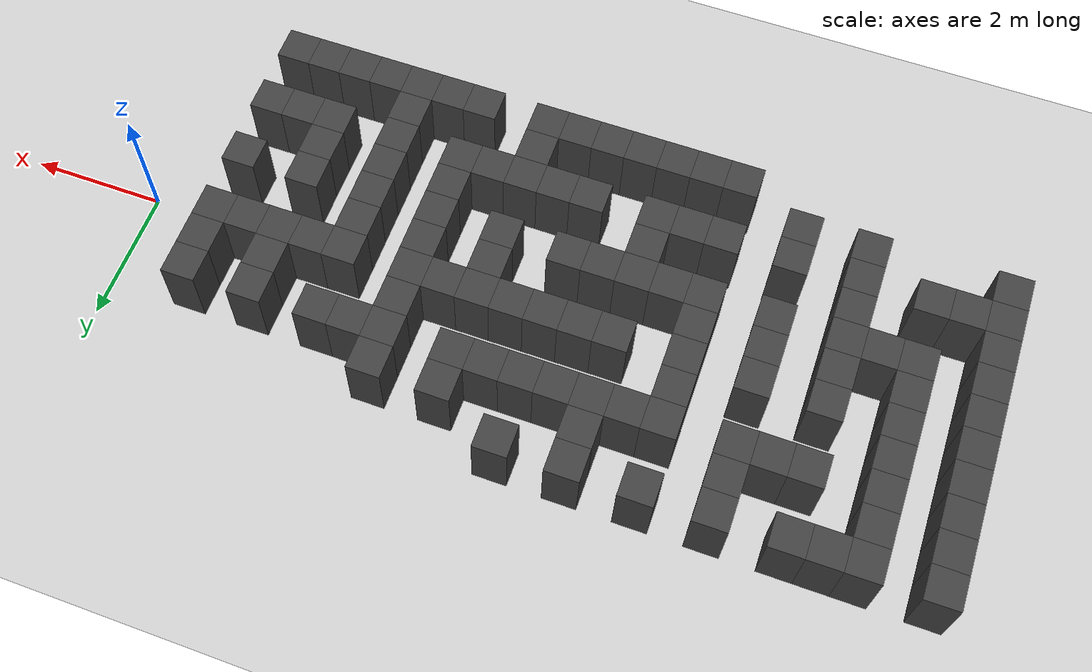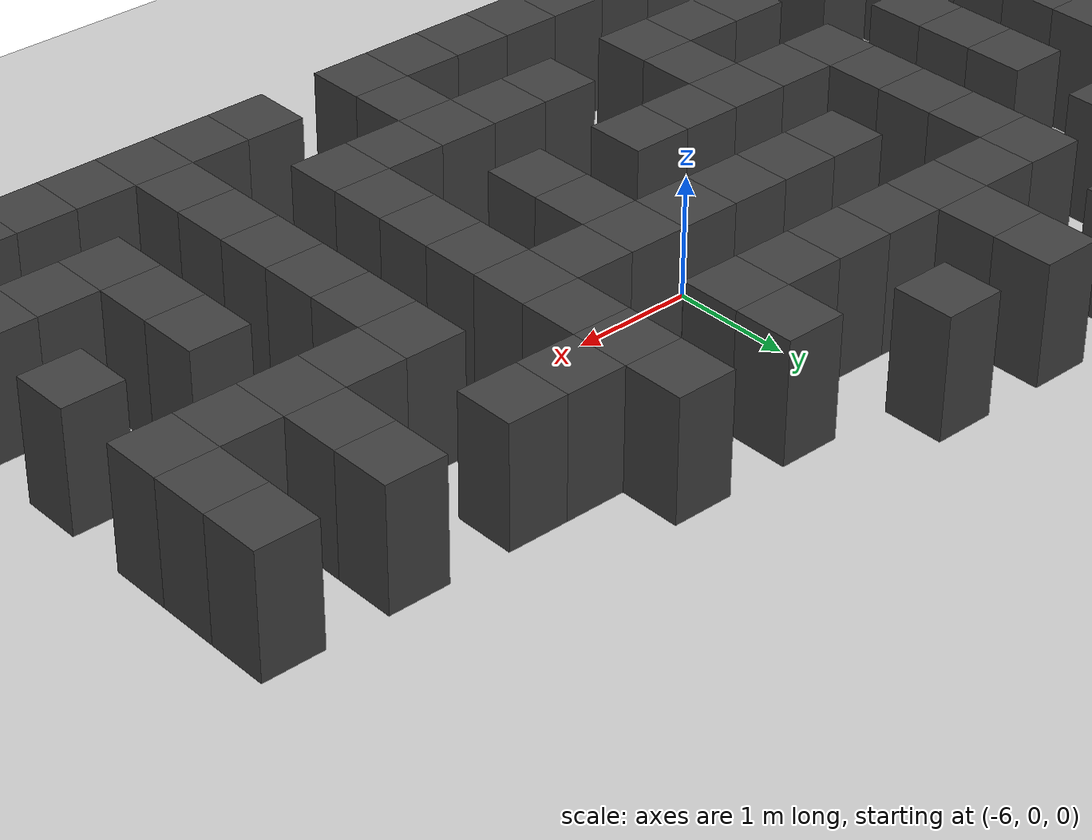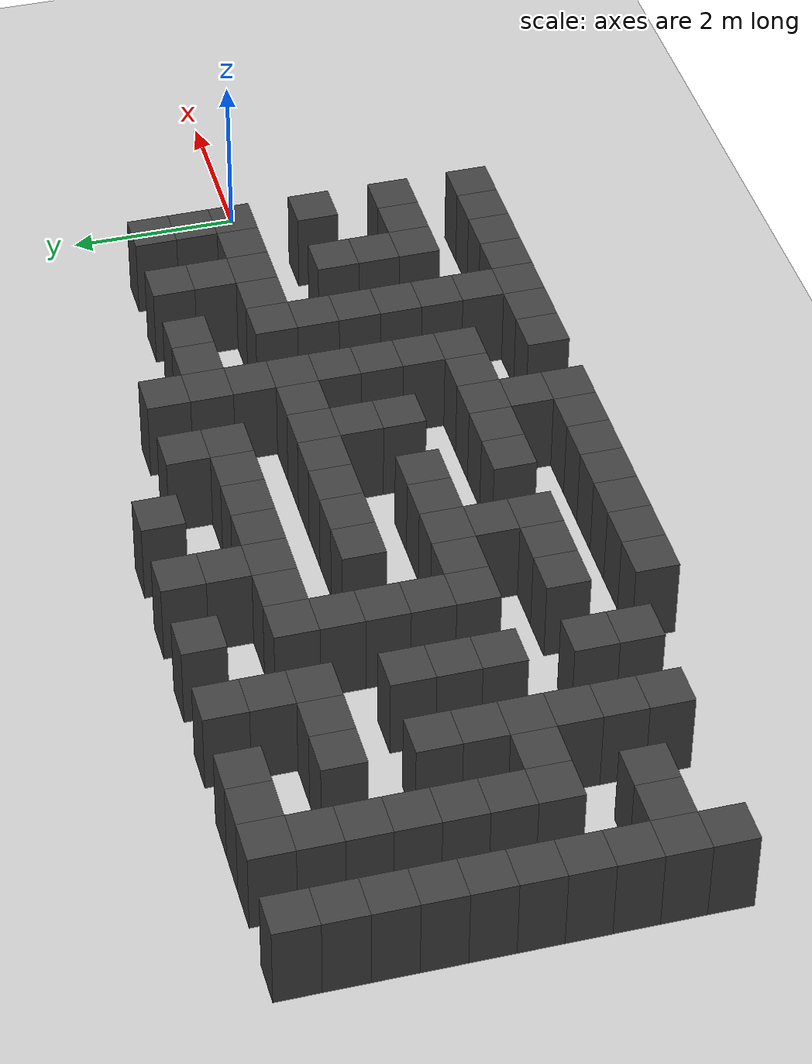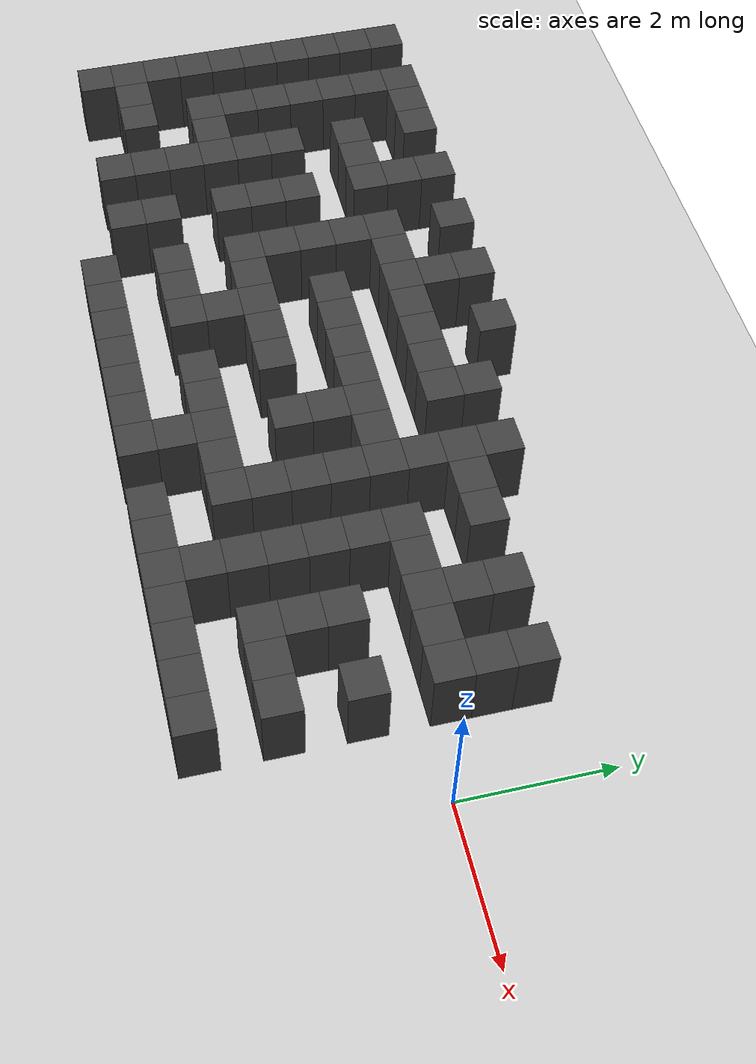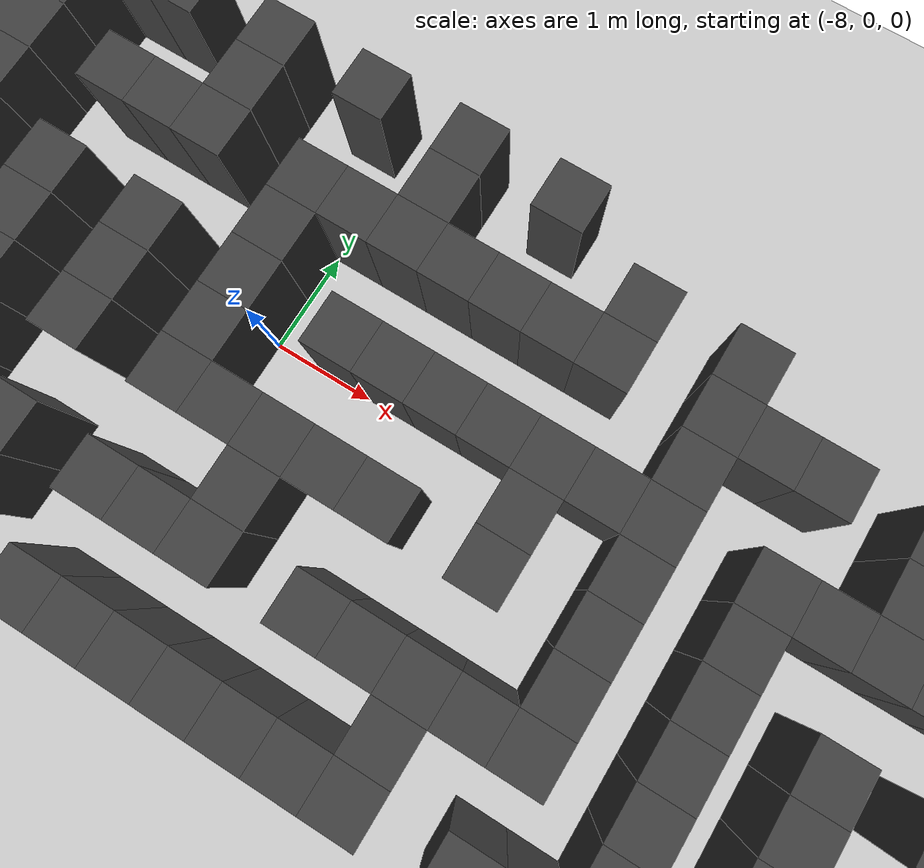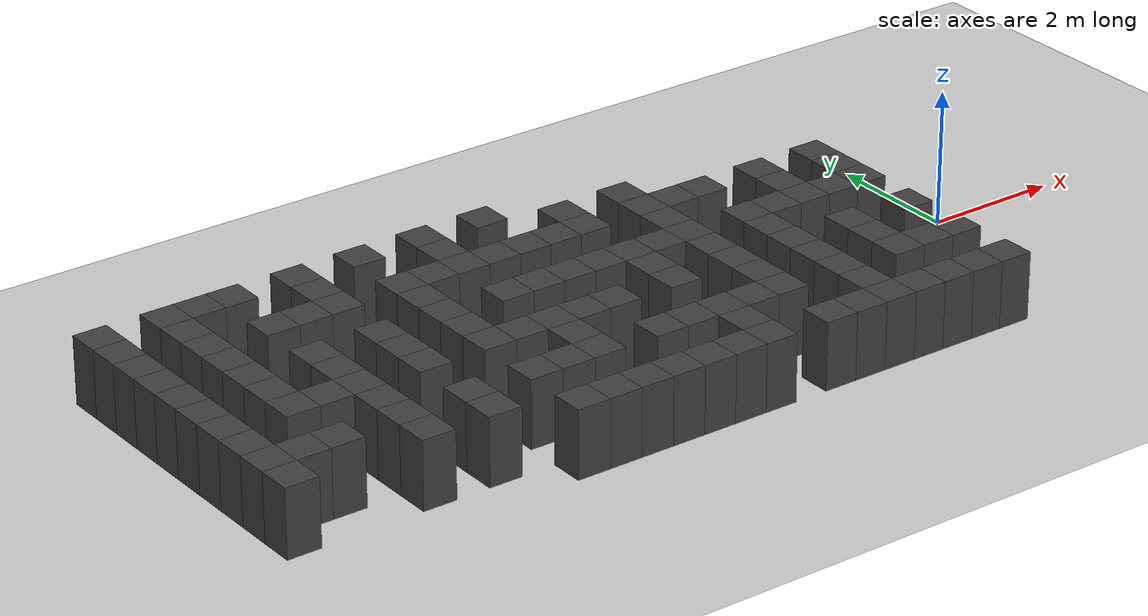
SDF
<sdf version="1.7">
 <world name="map_18814">
  <model name="ground_plane">
   <static>true</static>
   <link name="link">
    <collision name="collision">
     <geometry><plane><normal>0 0 1</normal><size>200 200</size></plane></geometry>
    </collision>
    <visual name="visual">
     <geometry><plane><normal>0 0 1</normal><size>200 200</size></plane></geometry>
     <material><ambient>0.8 0.8 0.8 1</ambient><diffuse>0.8 0.8 0.8 1</diffuse></material>
    </visual>
   </link>
  </model>
  <model name="maze_environment">
   <static>true</static>
   <link name="wall_513">
    <pose>-12.250 2.250 0.500 0 0 0</pose>
    <collision name="col"><geometry><box><size>0.5 0.5 1.0</size></box></geometry></collision>
    <visual name="vis">
     <geometry><box><size>0.5 0.5 1.0</size></box></geometry>
     <material><ambient>0.15 0.15 0.15 1</ambient><diffuse>0.25 0.25 0.25 1</diffuse></material>
    </visual>
   </link>
   <link name="wall_514">
    <pose>-11.250 2.250 0.500 0 0 0</pose>
    <collision name="col"><geometry><box><size>0.5 0.5 1.0</size></box></geometry></collision>
    <visual name="vis">
     <geometry><box><size>0.5 0.5 1.0</size></box></geometry>
     <material><ambient>0.15 0.15 0.15 1</ambient><diffuse>0.25 0.25 0.25 1</diffuse></material>
    </visual>
   </link>
   <link name="wall_515">
    <pose>-10.750 2.250 0.500 0 0 0</pose>
    <collision name="col"><geometry><box><size>0.5 0.5 1.0</size></box></geometry></collision>
    <visual name="vis">
     <geometry><box><size>0.5 0.5 1.0</size></box></geometry>
     <material><ambient>0.15 0.15 0.15 1</ambient><diffuse>0.25 0.25 0.25 1</diffuse></material>
    </visual>
   </link>
   <link name="wall_516">
    <pose>-10.250 2.250 0.500 0 0 0</pose>
    <collision name="col"><geometry><box><size>0.5 0.5 1.0</size></box></geometry></collision>
    <visual name="vis">
     <geometry><box><size>0.5 0.5 1.0</size></box></geometry>
     <material><ambient>0.15 0.15 0.15 1</ambient><diffuse>0.25 0.25 0.25 1</diffuse></material>
    </visual>
   </link>
   <link name="wall_517">
    <pose>-9.250 2.250 0.500 0 0 0</pose>
    <collision name="col"><geometry><box><size>0.5 0.5 1.0</size></box></geometry></collision>
    <visual name="vis">
     <geometry><box><size>0.5 0.5 1.0</size></box></geometry>
     <material><ambient>0.15 0.15 0.15 1</ambient><diffuse>0.25 0.25 0.25 1</diffuse></material>
    </visual>
   </link>
   <link name="wall_518">
    <pose>-8.250 2.250 0.500 0 0 0</pose>
    <collision name="col"><geometry><box><size>0.5 0.5 1.0</size></box></geometry></collision>
    <visual name="vis">
     <geometry><box><size>0.5 0.5 1.0</size></box></geometry>
     <material><ambient>0.15 0.15 0.15 1</ambient><diffuse>0.25 0.25 0.25 1</diffuse></material>
    </visual>
   </link>
   <link name="wall_519">
    <pose>-7.250 2.250 0.500 0 0 0</pose>
    <collision name="col"><geometry><box><size>0.5 0.5 1.0</size></box></geometry></collision>
    <visual name="vis">
     <geometry><box><size>0.5 0.5 1.0</size></box></geometry>
     <material><ambient>0.15 0.15 0.15 1</ambient><diffuse>0.25 0.25 0.25 1</diffuse></material>
    </visual>
   </link>
   <link name="wall_520">
    <pose>-6.250 2.250 0.500 0 0 0</pose>
    <collision name="col"><geometry><box><size>0.5 0.5 1.0</size></box></geometry></collision>
    <visual name="vis">
     <geometry><box><size>0.5 0.5 1.0</size></box></geometry>
     <material><ambient>0.15 0.15 0.15 1</ambient><diffuse>0.25 0.25 0.25 1</diffuse></material>
    </visual>
   </link>
   <link name="wall_546">
    <pose>-12.250 1.750 0.500 0 0 0</pose>
    <collision name="col"><geometry><box><size>0.5 0.5 1.0</size></box></geometry></collision>
    <visual name="vis">
     <geometry><box><size>0.5 0.5 1.0</size></box></geometry>
     <material><ambient>0.15 0.15 0.15 1</ambient><diffuse>0.25 0.25 0.25 1</diffuse></material>
    </visual>
   </link>
   <link name="wall_547">
    <pose>-11.250 1.750 0.500 0 0 0</pose>
    <collision name="col"><geometry><box><size>0.5 0.5 1.0</size></box></geometry></collision>
    <visual name="vis">
     <geometry><box><size>0.5 0.5 1.0</size></box></geometry>
     <material><ambient>0.15 0.15 0.15 1</ambient><diffuse>0.25 0.25 0.25 1</diffuse></material>
    </visual>
   </link>
   <link name="wall_548">
    <pose>-9.250 1.750 0.500 0 0 0</pose>
    <collision name="col"><geometry><box><size>0.5 0.5 1.0</size></box></geometry></collision>
    <visual name="vis">
     <geometry><box><size>0.5 0.5 1.0</size></box></geometry>
     <material><ambient>0.15 0.15 0.15 1</ambient><diffuse>0.25 0.25 0.25 1</diffuse></material>
    </visual>
   </link>
   <link name="wall_549">
    <pose>-7.250 1.750 0.500 0 0 0</pose>
    <collision name="col"><geometry><box><size>0.5 0.5 1.0</size></box></geometry></collision>
    <visual name="vis">
     <geometry><box><size>0.5 0.5 1.0</size></box></geometry>
     <material><ambient>0.15 0.15 0.15 1</ambient><diffuse>0.25 0.25 0.25 1</diffuse></material>
    </visual>
   </link>
   <link name="wall_550">
    <pose>-5.250 1.750 0.500 0 0 0</pose>
    <collision name="col"><geometry><box><size>0.5 0.5 1.0</size></box></geometry></collision>
    <visual name="vis">
     <geometry><box><size>0.5 0.5 1.0</size></box></geometry>
     <material><ambient>0.15 0.15 0.15 1</ambient><diffuse>0.25 0.25 0.25 1</diffuse></material>
    </visual>
   </link>
   <link name="wall_551">
    <pose>-4.250 1.750 0.500 0 0 0</pose>
    <collision name="col"><geometry><box><size>0.5 0.5 1.0</size></box></geometry></collision>
    <visual name="vis">
     <geometry><box><size>0.5 0.5 1.0</size></box></geometry>
     <material><ambient>0.15 0.15 0.15 1</ambient><diffuse>0.25 0.25 0.25 1</diffuse></material>
    </visual>
   </link>
   <link name="wall_560">
    <pose>-12.250 1.250 0.500 0 0 0</pose>
    <collision name="col"><geometry><box><size>0.5 0.5 1.0</size></box></geometry></collision>
    <visual name="vis">
     <geometry><box><size>0.5 0.5 1.0</size></box></geometry>
     <material><ambient>0.15 0.15 0.15 1</ambient><diffuse>0.25 0.25 0.25 1</diffuse></material>
    </visual>
   </link>
   <link name="wall_561">
    <pose>-11.250 1.250 0.500 0 0 0</pose>
    <collision name="col"><geometry><box><size>0.5 0.5 1.0</size></box></geometry></collision>
    <visual name="vis">
     <geometry><box><size>0.5 0.5 1.0</size></box></geometry>
     <material><ambient>0.15 0.15 0.15 1</ambient><diffuse>0.25 0.25 0.25 1</diffuse></material>
    </visual>
   </link>
   <link name="wall_562">
    <pose>-10.250 1.250 0.500 0 0 0</pose>
    <collision name="col"><geometry><box><size>0.5 0.5 1.0</size></box></geometry></collision>
    <visual name="vis">
     <geometry><box><size>0.5 0.5 1.0</size></box></geometry>
     <material><ambient>0.15 0.15 0.15 1</ambient><diffuse>0.25 0.25 0.25 1</diffuse></material>
    </visual>
   </link>
   <link name="wall_563">
    <pose>-9.750 1.250 0.500 0 0 0</pose>
    <collision name="col"><geometry><box><size>0.5 0.5 1.0</size></box></geometry></collision>
    <visual name="vis">
     <geometry><box><size>0.5 0.5 1.0</size></box></geometry>
     <material><ambient>0.15 0.15 0.15 1</ambient><diffuse>0.25 0.25 0.25 1</diffuse></material>
    </visual>
   </link>
   <link name="wall_564">
    <pose>-9.250 1.250 0.500 0 0 0</pose>
    <collision name="col"><geometry><box><size>0.5 0.5 1.0</size></box></geometry></collision>
    <visual name="vis">
     <geometry><box><size>0.5 0.5 1.0</size></box></geometry>
     <material><ambient>0.15 0.15 0.15 1</ambient><diffuse>0.25 0.25 0.25 1</diffuse></material>
    </visual>
   </link>
   <link name="wall_565">
    <pose>-8.250 1.250 0.500 0 0 0</pose>
    <collision name="col"><geometry><box><size>0.5 0.5 1.0</size></box></geometry></collision>
    <visual name="vis">
     <geometry><box><size>0.5 0.5 1.0</size></box></geometry>
     <material><ambient>0.15 0.15 0.15 1</ambient><diffuse>0.25 0.25 0.25 1</diffuse></material>
    </visual>
   </link>
   <link name="wall_566">
    <pose>-7.750 1.250 0.500 0 0 0</pose>
    <collision name="col"><geometry><box><size>0.5 0.5 1.0</size></box></geometry></collision>
    <visual name="vis">
     <geometry><box><size>0.5 0.5 1.0</size></box></geometry>
     <material><ambient>0.15 0.15 0.15 1</ambient><diffuse>0.25 0.25 0.25 1</diffuse></material>
    </visual>
   </link>
   <link name="wall_567">
    <pose>-7.250 1.250 0.500 0 0 0</pose>
    <collision name="col"><geometry><box><size>0.5 0.5 1.0</size></box></geometry></collision>
    <visual name="vis">
     <geometry><box><size>0.5 0.5 1.0</size></box></geometry>
     <material><ambient>0.15 0.15 0.15 1</ambient><diffuse>0.25 0.25 0.25 1</diffuse></material>
    </visual>
   </link>
   <link name="wall_568">
    <pose>-6.750 1.250 0.500 0 0 0</pose>
    <collision name="col"><geometry><box><size>0.5 0.5 1.0</size></box></geometry></collision>
    <visual name="vis">
     <geometry><box><size>0.5 0.5 1.0</size></box></geometry>
     <material><ambient>0.15 0.15 0.15 1</ambient><diffuse>0.25 0.25 0.25 1</diffuse></material>
    </visual>
   </link>
   <link name="wall_569">
    <pose>-6.250 1.250 0.500 0 0 0</pose>
    <collision name="col"><geometry><box><size>0.5 0.5 1.0</size></box></geometry></collision>
    <visual name="vis">
     <geometry><box><size>0.5 0.5 1.0</size></box></geometry>
     <material><ambient>0.15 0.15 0.15 1</ambient><diffuse>0.25 0.25 0.25 1</diffuse></material>
    </visual>
   </link>
   <link name="wall_570">
    <pose>-5.750 1.250 0.500 0 0 0</pose>
    <collision name="col"><geometry><box><size>0.5 0.5 1.0</size></box></geometry></collision>
    <visual name="vis">
     <geometry><box><size>0.5 0.5 1.0</size></box></geometry>
     <material><ambient>0.15 0.15 0.15 1</ambient><diffuse>0.25 0.25 0.25 1</diffuse></material>
    </visual>
   </link>
   <link name="wall_571">
    <pose>-5.250 1.250 0.500 0 0 0</pose>
    <collision name="col"><geometry><box><size>0.5 0.5 1.0</size></box></geometry></collision>
    <visual name="vis">
     <geometry><box><size>0.5 0.5 1.0</size></box></geometry>
     <material><ambient>0.15 0.15 0.15 1</ambient><diffuse>0.25 0.25 0.25 1</diffuse></material>
    </visual>
   </link>
   <link name="wall_572">
    <pose>-4.250 1.250 0.500 0 0 0</pose>
    <collision name="col"><geometry><box><size>0.5 0.5 1.0</size></box></geometry></collision>
    <visual name="vis">
     <geometry><box><size>0.5 0.5 1.0</size></box></geometry>
     <material><ambient>0.15 0.15 0.15 1</ambient><diffuse>0.25 0.25 0.25 1</diffuse></material>
    </visual>
   </link>
   <link name="wall_573">
    <pose>-3.750 1.250 0.500 0 0 0</pose>
    <collision name="col"><geometry><box><size>0.5 0.5 1.0</size></box></geometry></collision>
    <visual name="vis">
     <geometry><box><size>0.5 0.5 1.0</size></box></geometry>
     <material><ambient>0.15 0.15 0.15 1</ambient><diffuse>0.25 0.25 0.25 1</diffuse></material>
    </visual>
   </link>
   <link name="wall_574">
    <pose>-3.250 1.250 0.500 0 0 0</pose>
    <collision name="col"><geometry><box><size>0.5 0.5 1.0</size></box></geometry></collision>
    <visual name="vis">
     <geometry><box><size>0.5 0.5 1.0</size></box></geometry>
     <material><ambient>0.15 0.15 0.15 1</ambient><diffuse>0.25 0.25 0.25 1</diffuse></material>
    </visual>
   </link>
   <link name="wall_575">
    <pose>-2.250 1.250 0.500 0 0 0</pose>
    <collision name="col"><geometry><box><size>0.5 0.5 1.0</size></box></geometry></collision>
    <visual name="vis">
     <geometry><box><size>0.5 0.5 1.0</size></box></geometry>
     <material><ambient>0.15 0.15 0.15 1</ambient><diffuse>0.25 0.25 0.25 1</diffuse></material>
    </visual>
   </link>
   <link name="wall_576">
    <pose>-1.250 1.250 0.500 0 0 0</pose>
    <collision name="col"><geometry><box><size>0.5 0.5 1.0</size></box></geometry></collision>
    <visual name="vis">
     <geometry><box><size>0.5 0.5 1.0</size></box></geometry>
     <material><ambient>0.15 0.15 0.15 1</ambient><diffuse>0.25 0.25 0.25 1</diffuse></material>
    </visual>
   </link>
   <link name="wall_597">
    <pose>-12.250 0.750 0.500 0 0 0</pose>
    <collision name="col"><geometry><box><size>0.5 0.5 1.0</size></box></geometry></collision>
    <visual name="vis">
     <geometry><box><size>0.5 0.5 1.0</size></box></geometry>
     <material><ambient>0.15 0.15 0.15 1</ambient><diffuse>0.25 0.25 0.25 1</diffuse></material>
    </visual>
   </link>
   <link name="wall_598">
    <pose>-11.250 0.750 0.500 0 0 0</pose>
    <collision name="col"><geometry><box><size>0.5 0.5 1.0</size></box></geometry></collision>
    <visual name="vis">
     <geometry><box><size>0.5 0.5 1.0</size></box></geometry>
     <material><ambient>0.15 0.15 0.15 1</ambient><diffuse>0.25 0.25 0.25 1</diffuse></material>
    </visual>
   </link>
   <link name="wall_599">
    <pose>-8.250 0.750 0.500 0 0 0</pose>
    <collision name="col"><geometry><box><size>0.5 0.5 1.0</size></box></geometry></collision>
    <visual name="vis">
     <geometry><box><size>0.5 0.5 1.0</size></box></geometry>
     <material><ambient>0.15 0.15 0.15 1</ambient><diffuse>0.25 0.25 0.25 1</diffuse></material>
    </visual>
   </link>
   <link name="wall_600">
    <pose>-4.250 0.750 0.500 0 0 0</pose>
    <collision name="col"><geometry><box><size>0.5 0.5 1.0</size></box></geometry></collision>
    <visual name="vis">
     <geometry><box><size>0.5 0.5 1.0</size></box></geometry>
     <material><ambient>0.15 0.15 0.15 1</ambient><diffuse>0.25 0.25 0.25 1</diffuse></material>
    </visual>
   </link>
   <link name="wall_601">
    <pose>-2.250 0.750 0.500 0 0 0</pose>
    <collision name="col"><geometry><box><size>0.5 0.5 1.0</size></box></geometry></collision>
    <visual name="vis">
     <geometry><box><size>0.5 0.5 1.0</size></box></geometry>
     <material><ambient>0.15 0.15 0.15 1</ambient><diffuse>0.25 0.25 0.25 1</diffuse></material>
    </visual>
   </link>
   <link name="wall_602">
    <pose>-1.250 0.750 0.500 0 0 0</pose>
    <collision name="col"><geometry><box><size>0.5 0.5 1.0</size></box></geometry></collision>
    <visual name="vis">
     <geometry><box><size>0.5 0.5 1.0</size></box></geometry>
     <material><ambient>0.15 0.15 0.15 1</ambient><diffuse>0.25 0.25 0.25 1</diffuse></material>
    </visual>
   </link>
   <link name="wall_612">
    <pose>-12.250 0.250 0.500 0 0 0</pose>
    <collision name="col"><geometry><box><size>0.5 0.5 1.0</size></box></geometry></collision>
    <visual name="vis">
     <geometry><box><size>0.5 0.5 1.0</size></box></geometry>
     <material><ambient>0.15 0.15 0.15 1</ambient><diffuse>0.25 0.25 0.25 1</diffuse></material>
    </visual>
   </link>
   <link name="wall_613">
    <pose>-11.250 0.250 0.500 0 0 0</pose>
    <collision name="col"><geometry><box><size>0.5 0.5 1.0</size></box></geometry></collision>
    <visual name="vis">
     <geometry><box><size>0.5 0.5 1.0</size></box></geometry>
     <material><ambient>0.15 0.15 0.15 1</ambient><diffuse>0.25 0.25 0.25 1</diffuse></material>
    </visual>
   </link>
   <link name="wall_614">
    <pose>-10.250 0.250 0.500 0 0 0</pose>
    <collision name="col"><geometry><box><size>0.5 0.5 1.0</size></box></geometry></collision>
    <visual name="vis">
     <geometry><box><size>0.5 0.5 1.0</size></box></geometry>
     <material><ambient>0.15 0.15 0.15 1</ambient><diffuse>0.25 0.25 0.25 1</diffuse></material>
    </visual>
   </link>
   <link name="wall_615">
    <pose>-9.250 0.250 0.500 0 0 0</pose>
    <collision name="col"><geometry><box><size>0.5 0.5 1.0</size></box></geometry></collision>
    <visual name="vis">
     <geometry><box><size>0.5 0.5 1.0</size></box></geometry>
     <material><ambient>0.15 0.15 0.15 1</ambient><diffuse>0.25 0.25 0.25 1</diffuse></material>
    </visual>
   </link>
   <link name="wall_616">
    <pose>-8.250 0.250 0.500 0 0 0</pose>
    <collision name="col"><geometry><box><size>0.5 0.5 1.0</size></box></geometry></collision>
    <visual name="vis">
     <geometry><box><size>0.5 0.5 1.0</size></box></geometry>
     <material><ambient>0.15 0.15 0.15 1</ambient><diffuse>0.25 0.25 0.25 1</diffuse></material>
    </visual>
   </link>
   <link name="wall_617">
    <pose>-7.250 0.250 0.500 0 0 0</pose>
    <collision name="col"><geometry><box><size>0.5 0.5 1.0</size></box></geometry></collision>
    <visual name="vis">
     <geometry><box><size>0.5 0.5 1.0</size></box></geometry>
     <material><ambient>0.15 0.15 0.15 1</ambient><diffuse>0.25 0.25 0.25 1</diffuse></material>
    </visual>
   </link>
   <link name="wall_618">
    <pose>-6.750 0.250 0.500 0 0 0</pose>
    <collision name="col"><geometry><box><size>0.5 0.5 1.0</size></box></geometry></collision>
    <visual name="vis">
     <geometry><box><size>0.5 0.5 1.0</size></box></geometry>
     <material><ambient>0.15 0.15 0.15 1</ambient><diffuse>0.25 0.25 0.25 1</diffuse></material>
    </visual>
   </link>
   <link name="wall_619">
    <pose>-6.250 0.250 0.500 0 0 0</pose>
    <collision name="col"><geometry><box><size>0.5 0.5 1.0</size></box></geometry></collision>
    <visual name="vis">
     <geometry><box><size>0.5 0.5 1.0</size></box></geometry>
     <material><ambient>0.15 0.15 0.15 1</ambient><diffuse>0.25 0.25 0.25 1</diffuse></material>
    </visual>
   </link>
   <link name="wall_620">
    <pose>-5.750 0.250 0.500 0 0 0</pose>
    <collision name="col"><geometry><box><size>0.5 0.5 1.0</size></box></geometry></collision>
    <visual name="vis">
     <geometry><box><size>0.5 0.5 1.0</size></box></geometry>
     <material><ambient>0.15 0.15 0.15 1</ambient><diffuse>0.25 0.25 0.25 1</diffuse></material>
    </visual>
   </link>
   <link name="wall_621">
    <pose>-5.250 0.250 0.500 0 0 0</pose>
    <collision name="col"><geometry><box><size>0.5 0.5 1.0</size></box></geometry></collision>
    <visual name="vis">
     <geometry><box><size>0.5 0.5 1.0</size></box></geometry>
     <material><ambient>0.15 0.15 0.15 1</ambient><diffuse>0.25 0.25 0.25 1</diffuse></material>
    </visual>
   </link>
   <link name="wall_622">
    <pose>-4.750 0.250 0.500 0 0 0</pose>
    <collision name="col"><geometry><box><size>0.5 0.5 1.0</size></box></geometry></collision>
    <visual name="vis">
     <geometry><box><size>0.5 0.5 1.0</size></box></geometry>
     <material><ambient>0.15 0.15 0.15 1</ambient><diffuse>0.25 0.25 0.25 1</diffuse></material>
    </visual>
   </link>
   <link name="wall_623">
    <pose>-4.250 0.250 0.500 0 0 0</pose>
    <collision name="col"><geometry><box><size>0.5 0.5 1.0</size></box></geometry></collision>
    <visual name="vis">
     <geometry><box><size>0.5 0.5 1.0</size></box></geometry>
     <material><ambient>0.15 0.15 0.15 1</ambient><diffuse>0.25 0.25 0.25 1</diffuse></material>
    </visual>
   </link>
   <link name="wall_624">
    <pose>-3.250 0.250 0.500 0 0 0</pose>
    <collision name="col"><geometry><box><size>0.5 0.5 1.0</size></box></geometry></collision>
    <visual name="vis">
     <geometry><box><size>0.5 0.5 1.0</size></box></geometry>
     <material><ambient>0.15 0.15 0.15 1</ambient><diffuse>0.25 0.25 0.25 1</diffuse></material>
    </visual>
   </link>
   <link name="wall_625">
    <pose>-2.750 0.250 0.500 0 0 0</pose>
    <collision name="col"><geometry><box><size>0.5 0.5 1.0</size></box></geometry></collision>
    <visual name="vis">
     <geometry><box><size>0.5 0.5 1.0</size></box></geometry>
     <material><ambient>0.15 0.15 0.15 1</ambient><diffuse>0.25 0.25 0.25 1</diffuse></material>
    </visual>
   </link>
   <link name="wall_626">
    <pose>-2.250 0.250 0.500 0 0 0</pose>
    <collision name="col"><geometry><box><size>0.5 0.5 1.0</size></box></geometry></collision>
    <visual name="vis">
     <geometry><box><size>0.5 0.5 1.0</size></box></geometry>
     <material><ambient>0.15 0.15 0.15 1</ambient><diffuse>0.25 0.25 0.25 1</diffuse></material>
    </visual>
   </link>
   <link name="wall_627">
    <pose>-1.750 0.250 0.500 0 0 0</pose>
    <collision name="col"><geometry><box><size>0.5 0.5 1.0</size></box></geometry></collision>
    <visual name="vis">
     <geometry><box><size>0.5 0.5 1.0</size></box></geometry>
     <material><ambient>0.15 0.15 0.15 1</ambient><diffuse>0.25 0.25 0.25 1</diffuse></material>
    </visual>
   </link>
   <link name="wall_628">
    <pose>-1.250 0.250 0.500 0 0 0</pose>
    <collision name="col"><geometry><box><size>0.5 0.5 1.0</size></box></geometry></collision>
    <visual name="vis">
     <geometry><box><size>0.5 0.5 1.0</size></box></geometry>
     <material><ambient>0.15 0.15 0.15 1</ambient><diffuse>0.25 0.25 0.25 1</diffuse></material>
    </visual>
   </link>
   <link name="wall_646">
    <pose>-12.250 -0.250 0.500 0 0 0</pose>
    <collision name="col"><geometry><box><size>0.5 0.5 1.0</size></box></geometry></collision>
    <visual name="vis">
     <geometry><box><size>0.5 0.5 1.0</size></box></geometry>
     <material><ambient>0.15 0.15 0.15 1</ambient><diffuse>0.25 0.25 0.25 1</diffuse></material>
    </visual>
   </link>
   <link name="wall_647">
    <pose>-11.250 -0.250 0.500 0 0 0</pose>
    <collision name="col"><geometry><box><size>0.5 0.5 1.0</size></box></geometry></collision>
    <visual name="vis">
     <geometry><box><size>0.5 0.5 1.0</size></box></geometry>
     <material><ambient>0.15 0.15 0.15 1</ambient><diffuse>0.25 0.25 0.25 1</diffuse></material>
    </visual>
   </link>
   <link name="wall_648">
    <pose>-10.250 -0.250 0.500 0 0 0</pose>
    <collision name="col"><geometry><box><size>0.5 0.5 1.0</size></box></geometry></collision>
    <visual name="vis">
     <geometry><box><size>0.5 0.5 1.0</size></box></geometry>
     <material><ambient>0.15 0.15 0.15 1</ambient><diffuse>0.25 0.25 0.25 1</diffuse></material>
    </visual>
   </link>
   <link name="wall_649">
    <pose>-9.250 -0.250 0.500 0 0 0</pose>
    <collision name="col"><geometry><box><size>0.5 0.5 1.0</size></box></geometry></collision>
    <visual name="vis">
     <geometry><box><size>0.5 0.5 1.0</size></box></geometry>
     <material><ambient>0.15 0.15 0.15 1</ambient><diffuse>0.25 0.25 0.25 1</diffuse></material>
    </visual>
   </link>
   <link name="wall_650">
    <pose>-8.250 -0.250 0.500 0 0 0</pose>
    <collision name="col"><geometry><box><size>0.5 0.5 1.0</size></box></geometry></collision>
    <visual name="vis">
     <geometry><box><size>0.5 0.5 1.0</size></box></geometry>
     <material><ambient>0.15 0.15 0.15 1</ambient><diffuse>0.25 0.25 0.25 1</diffuse></material>
    </visual>
   </link>
   <link name="wall_651">
    <pose>-5.250 -0.250 0.500 0 0 0</pose>
    <collision name="col"><geometry><box><size>0.5 0.5 1.0</size></box></geometry></collision>
    <visual name="vis">
     <geometry><box><size>0.5 0.5 1.0</size></box></geometry>
     <material><ambient>0.15 0.15 0.15 1</ambient><diffuse>0.25 0.25 0.25 1</diffuse></material>
    </visual>
   </link>
   <link name="wall_652">
    <pose>-4.250 -0.250 0.500 0 0 0</pose>
    <collision name="col"><geometry><box><size>0.5 0.5 1.0</size></box></geometry></collision>
    <visual name="vis">
     <geometry><box><size>0.5 0.5 1.0</size></box></geometry>
     <material><ambient>0.15 0.15 0.15 1</ambient><diffuse>0.25 0.25 0.25 1</diffuse></material>
    </visual>
   </link>
   <link name="wall_653">
    <pose>-3.250 -0.250 0.500 0 0 0</pose>
    <collision name="col"><geometry><box><size>0.5 0.5 1.0</size></box></geometry></collision>
    <visual name="vis">
     <geometry><box><size>0.5 0.5 1.0</size></box></geometry>
     <material><ambient>0.15 0.15 0.15 1</ambient><diffuse>0.25 0.25 0.25 1</diffuse></material>
    </visual>
   </link>
   <link name="wall_661">
    <pose>-12.250 -0.750 0.500 0 0 0</pose>
    <collision name="col"><geometry><box><size>0.5 0.5 1.0</size></box></geometry></collision>
    <visual name="vis">
     <geometry><box><size>0.5 0.5 1.0</size></box></geometry>
     <material><ambient>0.15 0.15 0.15 1</ambient><diffuse>0.25 0.25 0.25 1</diffuse></material>
    </visual>
   </link>
   <link name="wall_662">
    <pose>-11.250 -0.750 0.500 0 0 0</pose>
    <collision name="col"><geometry><box><size>0.5 0.5 1.0</size></box></geometry></collision>
    <visual name="vis">
     <geometry><box><size>0.5 0.5 1.0</size></box></geometry>
     <material><ambient>0.15 0.15 0.15 1</ambient><diffuse>0.25 0.25 0.25 1</diffuse></material>
    </visual>
   </link>
   <link name="wall_663">
    <pose>-10.750 -0.750 0.500 0 0 0</pose>
    <collision name="col"><geometry><box><size>0.5 0.5 1.0</size></box></geometry></collision>
    <visual name="vis">
     <geometry><box><size>0.5 0.5 1.0</size></box></geometry>
     <material><ambient>0.15 0.15 0.15 1</ambient><diffuse>0.25 0.25 0.25 1</diffuse></material>
    </visual>
   </link>
   <link name="wall_664">
    <pose>-10.250 -0.750 0.500 0 0 0</pose>
    <collision name="col"><geometry><box><size>0.5 0.5 1.0</size></box></geometry></collision>
    <visual name="vis">
     <geometry><box><size>0.5 0.5 1.0</size></box></geometry>
     <material><ambient>0.15 0.15 0.15 1</ambient><diffuse>0.25 0.25 0.25 1</diffuse></material>
    </visual>
   </link>
   <link name="wall_665">
    <pose>-9.250 -0.750 0.500 0 0 0</pose>
    <collision name="col"><geometry><box><size>0.5 0.5 1.0</size></box></geometry></collision>
    <visual name="vis">
     <geometry><box><size>0.5 0.5 1.0</size></box></geometry>
     <material><ambient>0.15 0.15 0.15 1</ambient><diffuse>0.25 0.25 0.25 1</diffuse></material>
    </visual>
   </link>
   <link name="wall_666">
    <pose>-8.250 -0.750 0.500 0 0 0</pose>
    <collision name="col"><geometry><box><size>0.5 0.5 1.0</size></box></geometry></collision>
    <visual name="vis">
     <geometry><box><size>0.5 0.5 1.0</size></box></geometry>
     <material><ambient>0.15 0.15 0.15 1</ambient><diffuse>0.25 0.25 0.25 1</diffuse></material>
    </visual>
   </link>
   <link name="wall_667">
    <pose>-7.750 -0.750 0.500 0 0 0</pose>
    <collision name="col"><geometry><box><size>0.5 0.5 1.0</size></box></geometry></collision>
    <visual name="vis">
     <geometry><box><size>0.5 0.5 1.0</size></box></geometry>
     <material><ambient>0.15 0.15 0.15 1</ambient><diffuse>0.25 0.25 0.25 1</diffuse></material>
    </visual>
   </link>
   <link name="wall_668">
    <pose>-7.250 -0.750 0.500 0 0 0</pose>
    <collision name="col"><geometry><box><size>0.5 0.5 1.0</size></box></geometry></collision>
    <visual name="vis">
     <geometry><box><size>0.5 0.5 1.0</size></box></geometry>
     <material><ambient>0.15 0.15 0.15 1</ambient><diffuse>0.25 0.25 0.25 1</diffuse></material>
    </visual>
   </link>
   <link name="wall_669">
    <pose>-6.750 -0.750 0.500 0 0 0</pose>
    <collision name="col"><geometry><box><size>0.5 0.5 1.0</size></box></geometry></collision>
    <visual name="vis">
     <geometry><box><size>0.5 0.5 1.0</size></box></geometry>
     <material><ambient>0.15 0.15 0.15 1</ambient><diffuse>0.25 0.25 0.25 1</diffuse></material>
    </visual>
   </link>
   <link name="wall_670">
    <pose>-6.250 -0.750 0.500 0 0 0</pose>
    <collision name="col"><geometry><box><size>0.5 0.5 1.0</size></box></geometry></collision>
    <visual name="vis">
     <geometry><box><size>0.5 0.5 1.0</size></box></geometry>
     <material><ambient>0.15 0.15 0.15 1</ambient><diffuse>0.25 0.25 0.25 1</diffuse></material>
    </visual>
   </link>
   <link name="wall_671">
    <pose>-5.250 -0.750 0.500 0 0 0</pose>
    <collision name="col"><geometry><box><size>0.5 0.5 1.0</size></box></geometry></collision>
    <visual name="vis">
     <geometry><box><size>0.5 0.5 1.0</size></box></geometry>
     <material><ambient>0.15 0.15 0.15 1</ambient><diffuse>0.25 0.25 0.25 1</diffuse></material>
    </visual>
   </link>
   <link name="wall_672">
    <pose>-4.250 -0.750 0.500 0 0 0</pose>
    <collision name="col"><geometry><box><size>0.5 0.5 1.0</size></box></geometry></collision>
    <visual name="vis">
     <geometry><box><size>0.5 0.5 1.0</size></box></geometry>
     <material><ambient>0.15 0.15 0.15 1</ambient><diffuse>0.25 0.25 0.25 1</diffuse></material>
    </visual>
   </link>
   <link name="wall_673">
    <pose>-3.250 -0.750 0.500 0 0 0</pose>
    <collision name="col"><geometry><box><size>0.5 0.5 1.0</size></box></geometry></collision>
    <visual name="vis">
     <geometry><box><size>0.5 0.5 1.0</size></box></geometry>
     <material><ambient>0.15 0.15 0.15 1</ambient><diffuse>0.25 0.25 0.25 1</diffuse></material>
    </visual>
   </link>
   <link name="wall_674">
    <pose>-2.250 -0.750 0.500 0 0 0</pose>
    <collision name="col"><geometry><box><size>0.5 0.5 1.0</size></box></geometry></collision>
    <visual name="vis">
     <geometry><box><size>0.5 0.5 1.0</size></box></geometry>
     <material><ambient>0.15 0.15 0.15 1</ambient><diffuse>0.25 0.25 0.25 1</diffuse></material>
    </visual>
   </link>
   <link name="wall_675">
    <pose>-1.250 -0.750 0.500 0 0 0</pose>
    <collision name="col"><geometry><box><size>0.5 0.5 1.0</size></box></geometry></collision>
    <visual name="vis">
     <geometry><box><size>0.5 0.5 1.0</size></box></geometry>
     <material><ambient>0.15 0.15 0.15 1</ambient><diffuse>0.25 0.25 0.25 1</diffuse></material>
    </visual>
   </link>
   <link name="wall_698">
    <pose>-12.250 -1.250 0.500 0 0 0</pose>
    <collision name="col"><geometry><box><size>0.5 0.5 1.0</size></box></geometry></collision>
    <visual name="vis">
     <geometry><box><size>0.5 0.5 1.0</size></box></geometry>
     <material><ambient>0.15 0.15 0.15 1</ambient><diffuse>0.25 0.25 0.25 1</diffuse></material>
    </visual>
   </link>
   <link name="wall_699">
    <pose>-10.250 -1.250 0.500 0 0 0</pose>
    <collision name="col"><geometry><box><size>0.5 0.5 1.0</size></box></geometry></collision>
    <visual name="vis">
     <geometry><box><size>0.5 0.5 1.0</size></box></geometry>
     <material><ambient>0.15 0.15 0.15 1</ambient><diffuse>0.25 0.25 0.25 1</diffuse></material>
    </visual>
   </link>
   <link name="wall_700">
    <pose>-7.250 -1.250 0.500 0 0 0</pose>
    <collision name="col"><geometry><box><size>0.5 0.5 1.0</size></box></geometry></collision>
    <visual name="vis">
     <geometry><box><size>0.5 0.5 1.0</size></box></geometry>
     <material><ambient>0.15 0.15 0.15 1</ambient><diffuse>0.25 0.25 0.25 1</diffuse></material>
    </visual>
   </link>
   <link name="wall_701">
    <pose>-4.250 -1.250 0.500 0 0 0</pose>
    <collision name="col"><geometry><box><size>0.5 0.5 1.0</size></box></geometry></collision>
    <visual name="vis">
     <geometry><box><size>0.5 0.5 1.0</size></box></geometry>
     <material><ambient>0.15 0.15 0.15 1</ambient><diffuse>0.25 0.25 0.25 1</diffuse></material>
    </visual>
   </link>
   <link name="wall_702">
    <pose>-3.250 -1.250 0.500 0 0 0</pose>
    <collision name="col"><geometry><box><size>0.5 0.5 1.0</size></box></geometry></collision>
    <visual name="vis">
     <geometry><box><size>0.5 0.5 1.0</size></box></geometry>
     <material><ambient>0.15 0.15 0.15 1</ambient><diffuse>0.25 0.25 0.25 1</diffuse></material>
    </visual>
   </link>
   <link name="wall_703">
    <pose>-2.250 -1.250 0.500 0 0 0</pose>
    <collision name="col"><geometry><box><size>0.5 0.5 1.0</size></box></geometry></collision>
    <visual name="vis">
     <geometry><box><size>0.5 0.5 1.0</size></box></geometry>
     <material><ambient>0.15 0.15 0.15 1</ambient><diffuse>0.25 0.25 0.25 1</diffuse></material>
    </visual>
   </link>
   <link name="wall_710">
    <pose>-12.250 -1.750 0.500 0 0 0</pose>
    <collision name="col"><geometry><box><size>0.5 0.5 1.0</size></box></geometry></collision>
    <visual name="vis">
     <geometry><box><size>0.5 0.5 1.0</size></box></geometry>
     <material><ambient>0.15 0.15 0.15 1</ambient><diffuse>0.25 0.25 0.25 1</diffuse></material>
    </visual>
   </link>
   <link name="wall_711">
    <pose>-11.750 -1.750 0.500 0 0 0</pose>
    <collision name="col"><geometry><box><size>0.5 0.5 1.0</size></box></geometry></collision>
    <visual name="vis">
     <geometry><box><size>0.5 0.5 1.0</size></box></geometry>
     <material><ambient>0.15 0.15 0.15 1</ambient><diffuse>0.25 0.25 0.25 1</diffuse></material>
    </visual>
   </link>
   <link name="wall_712">
    <pose>-11.250 -1.750 0.500 0 0 0</pose>
    <collision name="col"><geometry><box><size>0.5 0.5 1.0</size></box></geometry></collision>
    <visual name="vis">
     <geometry><box><size>0.5 0.5 1.0</size></box></geometry>
     <material><ambient>0.15 0.15 0.15 1</ambient><diffuse>0.25 0.25 0.25 1</diffuse></material>
    </visual>
   </link>
   <link name="wall_713">
    <pose>-10.250 -1.750 0.500 0 0 0</pose>
    <collision name="col"><geometry><box><size>0.5 0.5 1.0</size></box></geometry></collision>
    <visual name="vis">
     <geometry><box><size>0.5 0.5 1.0</size></box></geometry>
     <material><ambient>0.15 0.15 0.15 1</ambient><diffuse>0.25 0.25 0.25 1</diffuse></material>
    </visual>
   </link>
   <link name="wall_714">
    <pose>-9.250 -1.750 0.500 0 0 0</pose>
    <collision name="col"><geometry><box><size>0.5 0.5 1.0</size></box></geometry></collision>
    <visual name="vis">
     <geometry><box><size>0.5 0.5 1.0</size></box></geometry>
     <material><ambient>0.15 0.15 0.15 1</ambient><diffuse>0.25 0.25 0.25 1</diffuse></material>
    </visual>
   </link>
   <link name="wall_715">
    <pose>-8.250 -1.750 0.500 0 0 0</pose>
    <collision name="col"><geometry><box><size>0.5 0.5 1.0</size></box></geometry></collision>
    <visual name="vis">
     <geometry><box><size>0.5 0.5 1.0</size></box></geometry>
     <material><ambient>0.15 0.15 0.15 1</ambient><diffuse>0.25 0.25 0.25 1</diffuse></material>
    </visual>
   </link>
   <link name="wall_716">
    <pose>-7.750 -1.750 0.500 0 0 0</pose>
    <collision name="col"><geometry><box><size>0.5 0.5 1.0</size></box></geometry></collision>
    <visual name="vis">
     <geometry><box><size>0.5 0.5 1.0</size></box></geometry>
     <material><ambient>0.15 0.15 0.15 1</ambient><diffuse>0.25 0.25 0.25 1</diffuse></material>
    </visual>
   </link>
   <link name="wall_717">
    <pose>-7.250 -1.750 0.500 0 0 0</pose>
    <collision name="col"><geometry><box><size>0.5 0.5 1.0</size></box></geometry></collision>
    <visual name="vis">
     <geometry><box><size>0.5 0.5 1.0</size></box></geometry>
     <material><ambient>0.15 0.15 0.15 1</ambient><diffuse>0.25 0.25 0.25 1</diffuse></material>
    </visual>
   </link>
   <link name="wall_718">
    <pose>-6.250 -1.750 0.500 0 0 0</pose>
    <collision name="col"><geometry><box><size>0.5 0.5 1.0</size></box></geometry></collision>
    <visual name="vis">
     <geometry><box><size>0.5 0.5 1.0</size></box></geometry>
     <material><ambient>0.15 0.15 0.15 1</ambient><diffuse>0.25 0.25 0.25 1</diffuse></material>
    </visual>
   </link>
   <link name="wall_719">
    <pose>-5.750 -1.750 0.500 0 0 0</pose>
    <collision name="col"><geometry><box><size>0.5 0.5 1.0</size></box></geometry></collision>
    <visual name="vis">
     <geometry><box><size>0.5 0.5 1.0</size></box></geometry>
     <material><ambient>0.15 0.15 0.15 1</ambient><diffuse>0.25 0.25 0.25 1</diffuse></material>
    </visual>
   </link>
   <link name="wall_720">
    <pose>-5.250 -1.750 0.500 0 0 0</pose>
    <collision name="col"><geometry><box><size>0.5 0.5 1.0</size></box></geometry></collision>
    <visual name="vis">
     <geometry><box><size>0.5 0.5 1.0</size></box></geometry>
     <material><ambient>0.15 0.15 0.15 1</ambient><diffuse>0.25 0.25 0.25 1</diffuse></material>
    </visual>
   </link>
   <link name="wall_721">
    <pose>-4.750 -1.750 0.500 0 0 0</pose>
    <collision name="col"><geometry><box><size>0.5 0.5 1.0</size></box></geometry></collision>
    <visual name="vis">
     <geometry><box><size>0.5 0.5 1.0</size></box></geometry>
     <material><ambient>0.15 0.15 0.15 1</ambient><diffuse>0.25 0.25 0.25 1</diffuse></material>
    </visual>
   </link>
   <link name="wall_722">
    <pose>-4.250 -1.750 0.500 0 0 0</pose>
    <collision name="col"><geometry><box><size>0.5 0.5 1.0</size></box></geometry></collision>
    <visual name="vis">
     <geometry><box><size>0.5 0.5 1.0</size></box></geometry>
     <material><ambient>0.15 0.15 0.15 1</ambient><diffuse>0.25 0.25 0.25 1</diffuse></material>
    </visual>
   </link>
   <link name="wall_723">
    <pose>-3.250 -1.750 0.500 0 0 0</pose>
    <collision name="col"><geometry><box><size>0.5 0.5 1.0</size></box></geometry></collision>
    <visual name="vis">
     <geometry><box><size>0.5 0.5 1.0</size></box></geometry>
     <material><ambient>0.15 0.15 0.15 1</ambient><diffuse>0.25 0.25 0.25 1</diffuse></material>
    </visual>
   </link>
   <link name="wall_724">
    <pose>-2.250 -1.750 0.500 0 0 0</pose>
    <collision name="col"><geometry><box><size>0.5 0.5 1.0</size></box></geometry></collision>
    <visual name="vis">
     <geometry><box><size>0.5 0.5 1.0</size></box></geometry>
     <material><ambient>0.15 0.15 0.15 1</ambient><diffuse>0.25 0.25 0.25 1</diffuse></material>
    </visual>
   </link>
   <link name="wall_725">
    <pose>-1.750 -1.750 0.500 0 0 0</pose>
    <collision name="col"><geometry><box><size>0.5 0.5 1.0</size></box></geometry></collision>
    <visual name="vis">
     <geometry><box><size>0.5 0.5 1.0</size></box></geometry>
     <material><ambient>0.15 0.15 0.15 1</ambient><diffuse>0.25 0.25 0.25 1</diffuse></material>
    </visual>
   </link>
   <link name="wall_726">
    <pose>-1.250 -1.750 0.500 0 0 0</pose>
    <collision name="col"><geometry><box><size>0.5 0.5 1.0</size></box></geometry></collision>
    <visual name="vis">
     <geometry><box><size>0.5 0.5 1.0</size></box></geometry>
     <material><ambient>0.15 0.15 0.15 1</ambient><diffuse>0.25 0.25 0.25 1</diffuse></material>
    </visual>
   </link>
   <link name="wall_748">
    <pose>-12.250 -2.250 0.500 0 0 0</pose>
    <collision name="col"><geometry><box><size>0.5 0.5 1.0</size></box></geometry></collision>
    <visual name="vis">
     <geometry><box><size>0.5 0.5 1.0</size></box></geometry>
     <material><ambient>0.15 0.15 0.15 1</ambient><diffuse>0.25 0.25 0.25 1</diffuse></material>
    </visual>
   </link>
   <link name="wall_749">
    <pose>-10.250 -2.250 0.500 0 0 0</pose>
    <collision name="col"><geometry><box><size>0.5 0.5 1.0</size></box></geometry></collision>
    <visual name="vis">
     <geometry><box><size>0.5 0.5 1.0</size></box></geometry>
     <material><ambient>0.15 0.15 0.15 1</ambient><diffuse>0.25 0.25 0.25 1</diffuse></material>
    </visual>
   </link>
   <link name="wall_750">
    <pose>-9.250 -2.250 0.500 0 0 0</pose>
    <collision name="col"><geometry><box><size>0.5 0.5 1.0</size></box></geometry></collision>
    <visual name="vis">
     <geometry><box><size>0.5 0.5 1.0</size></box></geometry>
     <material><ambient>0.15 0.15 0.15 1</ambient><diffuse>0.25 0.25 0.25 1</diffuse></material>
    </visual>
   </link>
   <link name="wall_751">
    <pose>-5.250 -2.250 0.500 0 0 0</pose>
    <collision name="col"><geometry><box><size>0.5 0.5 1.0</size></box></geometry></collision>
    <visual name="vis">
     <geometry><box><size>0.5 0.5 1.0</size></box></geometry>
     <material><ambient>0.15 0.15 0.15 1</ambient><diffuse>0.25 0.25 0.25 1</diffuse></material>
    </visual>
   </link>
   <link name="wall_752">
    <pose>-3.250 -2.250 0.500 0 0 0</pose>
    <collision name="col"><geometry><box><size>0.5 0.5 1.0</size></box></geometry></collision>
    <visual name="vis">
     <geometry><box><size>0.5 0.5 1.0</size></box></geometry>
     <material><ambient>0.15 0.15 0.15 1</ambient><diffuse>0.25 0.25 0.25 1</diffuse></material>
    </visual>
   </link>
   <link name="wall_769">
    <pose>-8.250 -2.750 0.500 0 0 0</pose>
    <collision name="col"><geometry><box><size>0.5 0.5 1.0</size></box></geometry></collision>
    <visual name="vis">
     <geometry><box><size>0.5 0.5 1.0</size></box></geometry>
     <material><ambient>0.15 0.15 0.15 1</ambient><diffuse>0.25 0.25 0.25 1</diffuse></material>
    </visual>
   </link>
   <link name="wall_770">
    <pose>-7.750 -2.750 0.500 0 0 0</pose>
    <collision name="col"><geometry><box><size>0.5 0.5 1.0</size></box></geometry></collision>
    <visual name="vis">
     <geometry><box><size>0.5 0.5 1.0</size></box></geometry>
     <material><ambient>0.15 0.15 0.15 1</ambient><diffuse>0.25 0.25 0.25 1</diffuse></material>
    </visual>
   </link>
   <link name="wall_771">
    <pose>-7.250 -2.750 0.500 0 0 0</pose>
    <collision name="col"><geometry><box><size>0.5 0.5 1.0</size></box></geometry></collision>
    <visual name="vis">
     <geometry><box><size>0.5 0.5 1.0</size></box></geometry>
     <material><ambient>0.15 0.15 0.15 1</ambient><diffuse>0.25 0.25 0.25 1</diffuse></material>
    </visual>
   </link>
   <link name="wall_772">
    <pose>-6.750 -2.750 0.500 0 0 0</pose>
    <collision name="col"><geometry><box><size>0.5 0.5 1.0</size></box></geometry></collision>
    <visual name="vis">
     <geometry><box><size>0.5 0.5 1.0</size></box></geometry>
     <material><ambient>0.15 0.15 0.15 1</ambient><diffuse>0.25 0.25 0.25 1</diffuse></material>
    </visual>
   </link>
   <link name="wall_773">
    <pose>-6.250 -2.750 0.500 0 0 0</pose>
    <collision name="col"><geometry><box><size>0.5 0.5 1.0</size></box></geometry></collision>
    <visual name="vis">
     <geometry><box><size>0.5 0.5 1.0</size></box></geometry>
     <material><ambient>0.15 0.15 0.15 1</ambient><diffuse>0.25 0.25 0.25 1</diffuse></material>
    </visual>
   </link>
   <link name="wall_774">
    <pose>-5.750 -2.750 0.500 0 0 0</pose>
    <collision name="col"><geometry><box><size>0.5 0.5 1.0</size></box></geometry></collision>
    <visual name="vis">
     <geometry><box><size>0.5 0.5 1.0</size></box></geometry>
     <material><ambient>0.15 0.15 0.15 1</ambient><diffuse>0.25 0.25 0.25 1</diffuse></material>
    </visual>
   </link>
   <link name="wall_775">
    <pose>-5.250 -2.750 0.500 0 0 0</pose>
    <collision name="col"><geometry><box><size>0.5 0.5 1.0</size></box></geometry></collision>
    <visual name="vis">
     <geometry><box><size>0.5 0.5 1.0</size></box></geometry>
     <material><ambient>0.15 0.15 0.15 1</ambient><diffuse>0.25 0.25 0.25 1</diffuse></material>
    </visual>
   </link>
   <link name="wall_776">
    <pose>-4.250 -2.750 0.500 0 0 0</pose>
    <collision name="col"><geometry><box><size>0.5 0.5 1.0</size></box></geometry></collision>
    <visual name="vis">
     <geometry><box><size>0.5 0.5 1.0</size></box></geometry>
     <material><ambient>0.15 0.15 0.15 1</ambient><diffuse>0.25 0.25 0.25 1</diffuse></material>
    </visual>
   </link>
   <link name="wall_777">
    <pose>-3.750 -2.750 0.500 0 0 0</pose>
    <collision name="col"><geometry><box><size>0.5 0.5 1.0</size></box></geometry></collision>
    <visual name="vis">
     <geometry><box><size>0.5 0.5 1.0</size></box></geometry>
     <material><ambient>0.15 0.15 0.15 1</ambient><diffuse>0.25 0.25 0.25 1</diffuse></material>
    </visual>
   </link>
   <link name="wall_778">
    <pose>-3.250 -2.750 0.500 0 0 0</pose>
    <collision name="col"><geometry><box><size>0.5 0.5 1.0</size></box></geometry></collision>
    <visual name="vis">
     <geometry><box><size>0.5 0.5 1.0</size></box></geometry>
     <material><ambient>0.15 0.15 0.15 1</ambient><diffuse>0.25 0.25 0.25 1</diffuse></material>
    </visual>
   </link>
   <link name="wall_779">
    <pose>-2.750 -2.750 0.500 0 0 0</pose>
    <collision name="col"><geometry><box><size>0.5 0.5 1.0</size></box></geometry></collision>
    <visual name="vis">
     <geometry><box><size>0.5 0.5 1.0</size></box></geometry>
     <material><ambient>0.15 0.15 0.15 1</ambient><diffuse>0.25 0.25 0.25 1</diffuse></material>
    </visual>
   </link>
   <link name="wall_780">
    <pose>-2.250 -2.750 0.500 0 0 0</pose>
    <collision name="col"><geometry><box><size>0.5 0.5 1.0</size></box></geometry></collision>
    <visual name="vis">
     <geometry><box><size>0.5 0.5 1.0</size></box></geometry>
     <material><ambient>0.15 0.15 0.15 1</ambient><diffuse>0.25 0.25 0.25 1</diffuse></material>
    </visual>
   </link>
   <link name="wall_781">
    <pose>-1.750 -2.750 0.500 0 0 0</pose>
    <collision name="col"><geometry><box><size>0.5 0.5 1.0</size></box></geometry></collision>
    <visual name="vis">
     <geometry><box><size>0.5 0.5 1.0</size></box></geometry>
     <material><ambient>0.15 0.15 0.15 1</ambient><diffuse>0.25 0.25 0.25 1</diffuse></material>
    </visual>
   </link>
   <link name="wall_782">
    <pose>-1.250 -2.750 0.500 0 0 0</pose>
    <collision name="col"><geometry><box><size>0.5 0.5 1.0</size></box></geometry></collision>
    <visual name="vis">
     <geometry><box><size>0.5 0.5 1.0</size></box></geometry>
     <material><ambient>0.15 0.15 0.15 1</ambient><diffuse>0.25 0.25 0.25 1</diffuse></material>
    </visual>
   </link>
  </model>
 </world>
</sdf>
